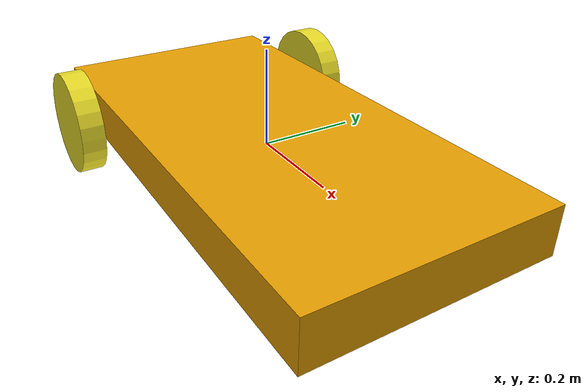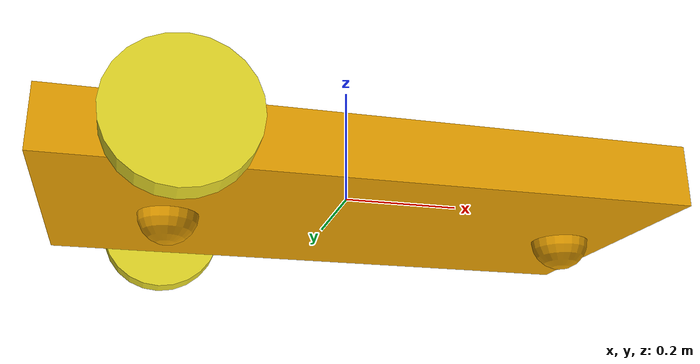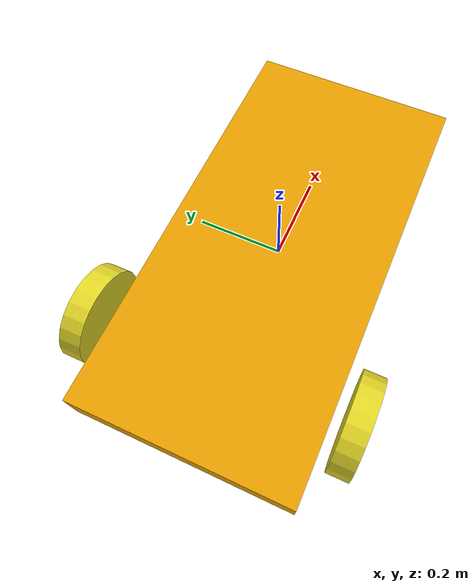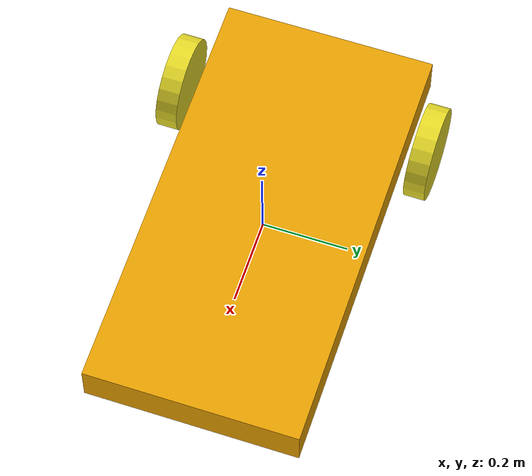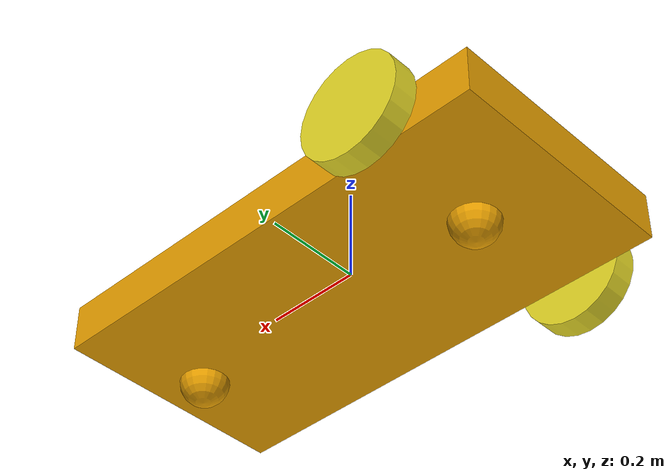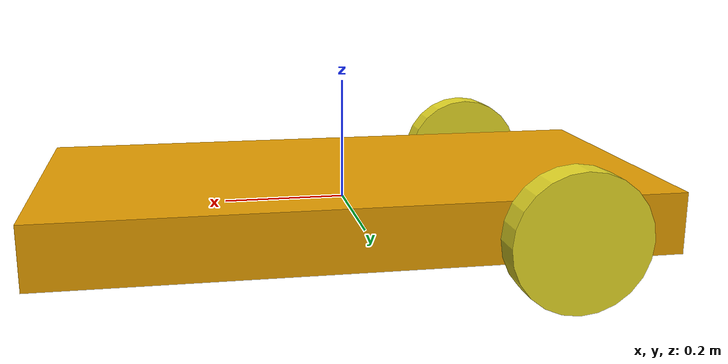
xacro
<?xml version='1.0'?>
<robot name="myrobot" xmlns:xacro="http://www.ros.org/wiki/xacro">

 <link name='base_link'>

    <pose>0 0 0.1 0 0 0</pose>

    <inertial>
      <mass value="5.0"/>
      <origin xyz="0.0 0 0.1" rpy=" 0 0 0"/>
      <inertia
          ixx="0.1" ixy="0" ixz="0"
          iyy="0.1" iyz="0"
          izz="0.1"
      />
    </inertial>

    <collision name='base_link_collision'>
      <geometry>
        <box size="1 0.5 .1"/>
      </geometry>
    </collision>

    <visual name='base_link_visual'>
      <origin xyz="0 0 0" rpy=" 0 0 0"/>
      <geometry>
        <box size="1 0.5 .1"/>
      </geometry>

    </visual>
    <collision name='caster_collision'>
      <origin xyz="-0.30 0 -0.05" rpy=" 0 0 0"/>
      <geometry>
        <sphere radius="0.05"/>
      </geometry>
       <surface>
        <friction>
          <ode>
            <mu>0</mu>
            <mu2>0</mu2>
            <slip1>1.0</slip1>
            <slip2>1.0</slip2>
          </ode>
        </friction>
      </surface>
    </collision>

    <visual name='caster_visual'>
      <origin xyz="-0.30 0 -0.05" rpy=" 0 0 0"/>
      <geometry>
        <sphere radius="0.05"/>
      </geometry>
    </visual>

    <collision name='caster_front_collision'>
      <origin xyz="0.40 0 -0.05" rpy=" 0 0 0"/>
      <geometry>
        <sphere radius="0.05"/>
      </geometry>
       <surface>
        <friction>
          <ode>
            <mu>0</mu>
            <mu2>0</mu2>
            <slip1>1.0</slip1>
            <slip2>1.0</slip2>
          </ode>
        </friction>
      </surface>
    </collision>

    <visual name='caster_front_visual'>
      <origin xyz="0.40 0 -0.05" rpy=" 0 0 0"/>
      <geometry>
        <sphere radius="0.05"/>
      </geometry>
    </visual>

  </link>

  <link name="left_wheel">
    <!--origin xyz="0.1 0.13 0.1" rpy="0 1.5707 1.5707"/-->
    <collision name="collision">
      <origin xyz="0 0 0" rpy="0 1.5707 1.5707"/>
      <geometry>
        <cylinder radius="0.11" length="0.05"/>
      </geometry>
    </collision>
    <visual name="left_wheel_visual">
      <origin xyz="0 0 0" rpy="0 1.5707 1.5707"/>
      <geometry>
        <cylinder radius="0.11" length="0.05"/>
      </geometry>
      <material name="yellow"/>

    </visual>
    <inertial>
      <origin xyz="0 0 0" rpy="0 1.5707 1.5707"/>
      <mass value="5"/>
      <inertia
        ixx=".1" ixy="0.0" ixz="0.0"
        iyy=".1" iyz="0.0"
        izz=".1"/>
    </inertial>
  </link>

  <link name="right_wheel">
    <!--origin xyz="0.1 -0.13 0.1" rpy="0 1.5707 1.5707"/-->
    <collision name="collision">
      <origin xyz="0 0 0" rpy="0 1.5707 1.5707"/>
      <geometry>
        <cylinder radius="0.11" length="0.05"/>
      </geometry>
    </collision>
    <visual name="right_wheel_visual">
      <origin xyz="0 0 0" rpy="0 1.5707 1.5707"/>
      <geometry>
        <cylinder radius="0.11" length="0.05"/>
      </geometry>
      <material name="yellow"/>

    </visual>
    <inertial>
      <origin xyz="0 0 0" rpy="0 1.5707 1.5707"/>
      <mass value="5"/>
      <inertia
        ixx=".1" ixy="0.0" ixz="0.0"
        iyy=".1" iyz="0.0"
        izz=".1"/>
    </inertial>
  </link>

  <joint type="continuous" name="left_wheel_hinge">
    <origin xyz="-0.3 0.30 0" rpy="0 0 0"/>
    <!--origin xyz="0.1 0.13 0" rpy="0 1.5707 1.5707"/-->
    <child link="left_wheel"/>
    <parent link="base_link"/>
    <axis xyz="0 1 0" rpy="0 0 0"/>
    <limit effort="10000" velocity="1000"/>
    <joint_properties damping="0.0" friction="0.0"/>
  </joint>

  <joint type="continuous" name="right_wheel_hinge">
    <origin xyz="-0.3 -0.30 0" rpy="0 0 0"/>
    <!--origin xyz="0.1 -0.13 0" rpy="0 1.5707 1.5707"/-->
    <child link="right_wheel"/>
    <parent link="base_link"/>
    <axis xyz="0 1 0" rpy="0 0 0"/>
    <limit effort="10000" velocity="1000"/>
    <joint_properties damping="0.0" friction="0.0"/>
  </joint>

</robot>
